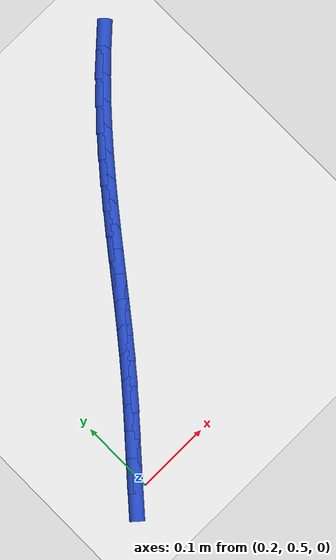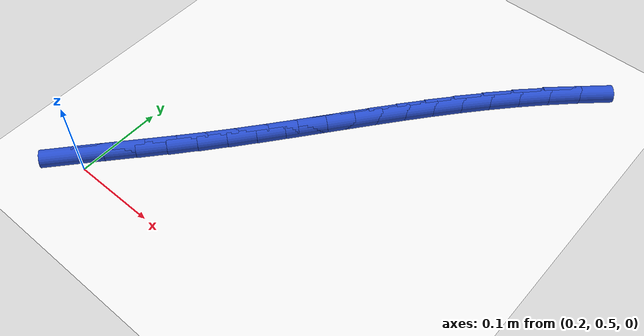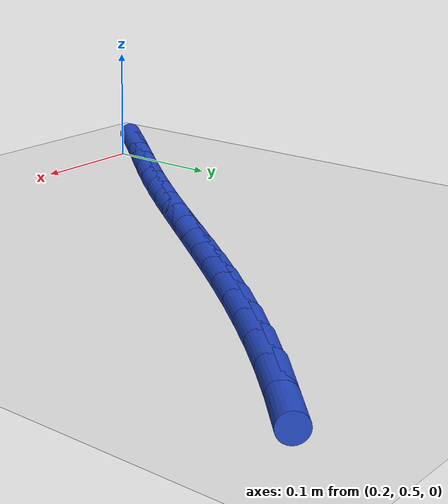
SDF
<sdf version="1.6">
 <world name="default">
  <model name="ground_plane">
   <static>1</static>
   <link name="link">
    <collision name="collision">
     <geometry><plane><normal>0 0 1</normal><size>100 100</size></plane></geometry>
     <surface><friction><ode><mu>100</mu><mu2>50</mu2></ode></friction></surface>
    </collision>
    <visual name="visual">
     <cast_shadows>0</cast_shadows>
     <geometry><plane><normal>0 0 1</normal><size>100 100</size></plane></geometry>
     <material>
      <script><uri>file://media/materials/scripts/gazebo.material</uri><name>Gazebo/WhiteGlow</name></script>
     </material>
    </visual>
   </link>
  </model>
  <model name="line">
   <link name="link_16">
    <pose>0.18653064510751188 0.5043626588901896 0.01 0 1.57 0.8498612615660565</pose>
    <collision name="collision">
     <geometry><cylinder><radius>0.01</radius><length>0.08</length></cylinder></geometry>
    </collision>
    <visual name="visual">
     <material>
      <script><name>Gazebo/Blue</name><uri>file://media/materials/scripts/gazebo.material</uri></script>
     </material>
     <geometry><cylinder><radius>0.01</radius><length>0.08</length></cylinder></geometry>
    </visual>
   </link>
   <link name="link_17">
    <pose>0.20959407088236234 0.530609166021257 0.01 0 1.57 0.8442993746222155</pose>
    <collision name="collision">
     <geometry><cylinder><radius>0.01</radius><length>0.08</length></cylinder></geometry>
    </collision>
    <visual name="visual">
     <material>
      <script><name>Gazebo/Blue</name><uri>file://media/materials/scripts/gazebo.material</uri></script>
     </material>
     <geometry><cylinder><radius>0.01</radius><length>0.08</length></cylinder></geometry>
    </visual>
   </link>
   <link name="link_18">
    <pose>0.23266439911867784 0.5565708858004882 0.01 0 1.57 0.8464625355110619</pose>
    <collision name="collision">
     <geometry><cylinder><radius>0.01</radius><length>0.08</length></cylinder></geometry>
    </collision>
    <visual name="visual">
     <material>
      <script><name>Gazebo/Blue</name><uri>file://media/materials/scripts/gazebo.material</uri></script>
     </material>
     <geometry><cylinder><radius>0.01</radius><length>0.08</length></cylinder></geometry>
    </visual>
   </link>
   <link name="link_19">
    <pose>0.2554582667025522 0.5823335164075215 0.01 0 1.57 0.856600932061387</pose>
    <collision name="collision">
     <geometry><cylinder><radius>0.01</radius><length>0.08</length></cylinder></geometry>
    </collision>
    <visual name="visual">
     <material>
      <script><name>Gazebo/Blue</name><uri>file://media/materials/scripts/gazebo.material</uri></script>
     </material>
     <geometry><cylinder><radius>0.01</radius><length>0.08</length></cylinder></geometry>
    </visual>
   </link>
   <link name="link_20">
    <pose>0.2776923105200786 0.6079827560219941 0.01 0 1.57 0.8732345664060137</pose>
    <collision name="collision">
     <geometry><cylinder><radius>0.01</radius><length>0.08</length></cylinder></geometry>
    </collision>
    <visual name="visual">
     <material>
      <script><name>Gazebo/Blue</name><uri>file://media/materials/scripts/gazebo.material</uri></script>
     </material>
     <geometry><cylinder><radius>0.01</radius><length>0.08</length></cylinder></geometry>
    </visual>
   </link>
   <link name="link_21">
    <pose>0.2991556727107114 0.6335914219990036 0.01 0 1.57 0.8883167888411567</pose>
    <collision name="collision">
     <geometry><cylinder><radius>0.01</radius><length>0.08</length></cylinder></geometry>
    </collision>
    <visual name="visual">
     <material>
      <script><name>Gazebo/Blue</name><uri>file://media/materials/scripts/gazebo.material</uri></script>
     </material>
     <geometry><cylinder><radius>0.01</radius><length>0.08</length></cylinder></geometry>
    </visual>
   </link>
   <link name="link_22">
    <pose>0.3199506357465388 0.6591767011635202 0.01 0 1.57 0.8993529324511338</pose>
    <collision name="collision">
     <geometry><cylinder><radius>0.01</radius><length>0.08</length></cylinder></geometry>
    </collision>
    <visual name="visual">
     <material>
      <script><name>Gazebo/Blue</name><uri>file://media/materials/scripts/gazebo.material</uri></script>
     </material>
     <geometry><cylinder><radius>0.01</radius><length>0.08</length></cylinder></geometry>
    </visual>
   </link>
   <link name="link_23">
    <pose>0.34026400043450217 0.6847407653479269 0.01 0 1.57 0.9060995472290491</pose>
    <collision name="collision">
     <geometry><cylinder><radius>0.01</radius><length>0.08</length></cylinder></geometry>
    </collision>
    <visual name="visual">
     <material>
      <script><name>Gazebo/Blue</name><uri>file://media/materials/scripts/gazebo.material</uri></script>
     </material>
     <geometry><cylinder><radius>0.01</radius><length>0.08</length></cylinder></geometry>
    </visual>
   </link>
   <link name="link_24">
    <pose>0.36028256888950366 0.7102857861522435 0.01 0 1.57 0.908403689949582</pose>
    <collision name="collision">
     <geometry><cylinder><radius>0.01</radius><length>0.08</length></cylinder></geometry>
    </collision>
    <visual name="visual">
     <material>
      <script><name>Gazebo/Blue</name><uri>file://media/materials/scripts/gazebo.material</uri></script>
     </material>
     <geometry><cylinder><radius>0.01</radius><length>0.08</length></cylinder></geometry>
    </visual>
   </link>
   <link name="link_25">
    <pose>0.38019314322644554 0.7358139351764884 0.01 0 1.57 0.9062074800982112</pose>
    <collision name="collision">
     <geometry><cylinder><radius>0.01</radius><length>0.08</length></cylinder></geometry>
    </collision>
    <visual name="visual">
     <material>
      <script><name>Gazebo/Blue</name><uri>file://media/materials/scripts/gazebo.material</uri></script>
     </material>
     <geometry><cylinder><radius>0.01</radius><length>0.08</length></cylinder></geometry>
    </visual>
   </link>
   <link name="link_26">
    <pose>0.4001825255602298 0.7613273840206815 0.01 0 1.57 0.8995500128478302</pose>
    <collision name="collision">
     <geometry><cylinder><radius>0.01</radius><length>0.08</length></cylinder></geometry>
    </collision>
    <visual name="visual">
     <material>
      <script><name>Gazebo/Blue</name><uri>file://media/materials/scripts/gazebo.material</uri></script>
     </material>
     <geometry><cylinder><radius>0.01</radius><length>0.08</length></cylinder></geometry>
    </visual>
   </link>
   <link name="link_27">
    <pose>0.4204375180057587 0.7868283042848415 0.01 0 1.57 0.8885666906850642</pose>
    <collision name="collision">
     <geometry><cylinder><radius>0.01</radius><length>0.08</length></cylinder></geometry>
    </collision>
    <visual name="visual">
     <material>
      <script><name>Gazebo/Blue</name><uri>file://media/materials/scripts/gazebo.material</uri></script>
     </material>
     <geometry><cylinder><radius>0.01</radius><length>0.08</length></cylinder></geometry>
    </visual>
   </link>
   <link name="link_28">
    <pose>0.4411449226779342 0.8123188675689879 0.01 0 1.57 0.8734858136725207</pose>
    <collision name="collision">
     <geometry><cylinder><radius>0.01</radius><length>0.08</length></cylinder></geometry>
    </collision>
    <visual name="visual">
     <material>
      <script><name>Gazebo/Blue</name><uri>file://media/materials/scripts/gazebo.material</uri></script>
     </material>
     <geometry><cylinder><radius>0.01</radius><length>0.08</length></cylinder></geometry>
    </visual>
   </link>
   <link name="link_29">
    <pose>0.4624915416916584 0.8378012454731395 0.01 0 1.57 0.8546220693673238</pose>
    <collision name="collision">
     <geometry><cylinder><radius>0.01</radius><length>0.08</length></cylinder></geometry>
    </collision>
    <visual name="visual">
     <material>
      <script><name>Gazebo/Blue</name><uri>file://media/materials/scripts/gazebo.material</uri></script>
     </material>
     <geometry><cylinder><radius>0.01</radius><length>0.08</length></cylinder></geometry>
    </visual>
   </link>
   <link name="link_30">
    <pose>0.48466417716183396 0.8632776095973161 0.01 0 1.57 0.8323665345735363</pose>
    <collision name="collision">
     <geometry><cylinder><radius>0.01</radius><length>0.08</length></cylinder></geometry>
    </collision>
    <visual name="visual">
     <material>
      <script><name>Gazebo/Blue</name><uri>file://media/materials/scripts/gazebo.material</uri></script>
     </material>
     <geometry><cylinder><radius>0.01</radius><length>0.08</length></cylinder></geometry>
    </visual>
   </link>
   <link name="link_31">
    <pose>0.5078496312033622 0.8887501315415361 0.01 0 1.57 0.8071730076617267</pose>
    <collision name="collision">
     <geometry><cylinder><radius>0.01</radius><length>0.08</length></cylinder></geometry>
    </collision>
    <visual name="visual">
     <material>
      <script><name>Gazebo/Blue</name><uri>file://media/materials/scripts/gazebo.material</uri></script>
     </material>
     <geometry><cylinder><radius>0.01</radius><length>0.08</length></cylinder></geometry>
    </visual>
   </link>
   <link name="link_32">
    <pose>0.5322347059311461 0.9142209829058197 0.01 0 1.57 0.7795409225787113</pose>
    <collision name="collision">
     <geometry><cylinder><radius>0.01</radius><length>0.08</length></cylinder></geometry>
    </collision>
    <visual name="visual">
     <material>
      <script><name>Gazebo/Blue</name><uri>file://media/materials/scripts/gazebo.material</uri></script>
     </material>
     <geometry><cylinder><radius>0.01</radius><length>0.08</length></cylinder></geometry>
    </visual>
   </link>
   <link name="link_33">
    <pose>0.5580062034600871 0.9396923352901854 0.01 0 1.57 0.7499956609281561</pose>
    <collision name="collision">
     <geometry><cylinder><radius>0.01</radius><length>0.08</length></cylinder></geometry>
    </collision>
    <visual name="visual">
     <material>
      <script><name>Gazebo/Blue</name><uri>file://media/materials/scripts/gazebo.material</uri></script>
     </material>
     <geometry><cylinder><radius>0.01</radius><length>0.08</length></cylinder></geometry>
    </visual>
   </link>
  </model>
 </world>
</sdf>
